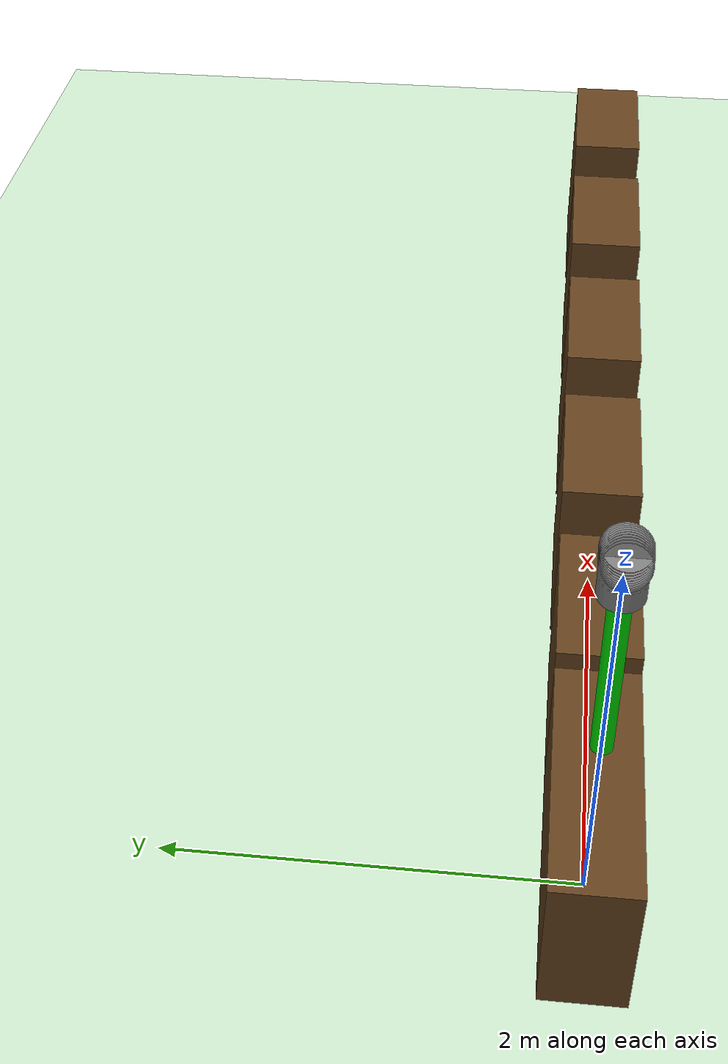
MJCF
<mujoco>
 <visual>
<headlight ambient="0.5 0.5 0.5"/>
 </visual>
	<option timestep="0.001" integrator="RK4" gravity="0 0 -9.81">
		<flag sensornoise="disable" contact="enable" energy="enable"/>
	</option>

<asset>
	<texture builtin="gradient" height="100" rgb1="1 1 1" rgb2="0 0 0" type="skybox" width="100"/>
	<texture builtin="flat" height="1278" mark="cross" markrgb="1 1 1" name="texgeom" random="0.01" rgb1="0.8 0.6 0.4" rgb2="0.8 0.6 0.4" type="cube" width="127"/>
	<texture builtin="checker" height="100" name="texplane" rgb1="0 0 0" rgb2="0.8 0.8 0.8" type="2d" width="100"/>
	<material name="MatPlane" reflectance="0.1" shininess="0" specular="1" texrepeat="10 10" texture="texplane"/>
	<material name="geom" texture="texgeom" texuniform="true"/>
</asset>

<worldbody>
    <light cutoff="100" diffuse="1 1 1" dir="-0 0 -1.3" directional="true" exponent="1" pos="0 0 1.3" specular=".1 .1 .1"/>
    <geom conaffinity="1" condim="3" material="MatPlane" name="floor" pos="0 0 0" rgba="0.8 0.9 0.8 1" size="40 40 40" type="plane"/>
	<camera name="camera" mode="trackcom"  pos="2.0 -7. 4.5" euler="60 -0 0" />

			<body name="platform_1" pos="0 0 0.3" euler = "0 0 0">
				<geom type="box" size="0.6 0.2 0.5" rgba = "0.39 0.26 0.12 1"/>
			</body>
			<body name="platform_2" pos="1 0 0.4" euler = "0 0 0">
				<geom type="box" size="0.4 0.2 0.5" rgba = "0.39 0.26 0.12 1"/>
			</body>
			<body name="platform_3" pos="2 0 0.5" euler = "0 0 0">
				<geom type="box" size="0.4 0.2 0.5" rgba = "0.39 0.26 0.12 1"/>
			</body>
			<body name="platform_4" pos="3 0 0.6" euler = "0 0 0">
				<geom type="box" size="0.4 0.2 0.5" rgba = "0.39 0.26 0.12 1"/>
			</body>
			<body name="platform_5" pos="4 0 0.7" euler = "0 0 0">
				<geom type="box" size="0.4 0.2 0.5" rgba = "0.39 0.26 0.12 1"/>
			</body>
			<body name="platform_6" pos="5 0 0.8" euler = "0 0 0">
				<geom type="box" size="0.4 0.2 0.5" rgba = "0.39 0.26 0.12 1"/>
			</body>
			<body name="torso" pos="0 0 2">
				<site name="range_site_1" pos="0 0 0.1" size="0.1 0.1 0.1" euler="0 110 0" type="cylinder"/>
				<site name="range_site_2" pos="0 0 0.1" size="0.1 0.1 0.1" euler="0 115 0" type="cylinder"/>
				<site name="range_site_3" pos="0 0 0.1" size="0.1 0.1 0.1" euler="0 120 0" type="cylinder"/>
				<site name="range_site_4" pos="0 0 0.1" size="0.1 0.1 0.1" euler="0 125 0" type="cylinder"/>
				<site name="range_site_5" pos="0 0 0.1" size="0.1 0.1 0.1" euler="0 130 0" type="cylinder"/>
				<site name="range_site_6" pos="0 0 0.1" size="0.1 0.1 0.1" euler="0 135 0" type="cylinder"/>
				<site name="range_site_7" pos="0 0 0.1" size="0.1 0.1 0.1" euler="0 140 0" type="cylinder"/>
				<site name="range_site_8" pos="0 0 0.1" size="0.1 0.1 0.1" euler="0 145 0" type="cylinder"/>
				<site name="range_site_9" pos="0 0 0.1" size="0.1 0.1 0.1" euler="0 150 0" type="cylinder"/>
				<site name="range_site_10" pos="0 0 0.1" size="0.1 0.1 0.1" euler="0 155 0" type="cylinder"/>
				<site name="accel_site" pos="0 0 0" size="0.1 0.1 0.1" euler="0 0 0" type="cylinder"/>
				<site name="gyro_site" pos="0 0 0" size="0.1 0.1 0.1" euler="0 0 0" type="cylinder"/>
				<joint name="x" type="slide" pos="0 0 0" axis="1 0 0" />
				<joint name="z" type="slide" pos="0 0 0" axis="0 0 1" />
				<geom type="sphere" size="0.1" rgba=".9 .9 .9 1" mass="1"/>
				<body name="leg" pos="0 0 -0.5" euler="0 0 0">
					<joint name="hip" type="hinge" pos="0 0 0.5" axis="0 -1 0" />
					<geom type="cylinder" size=".05 .5" rgba="0 .9 0 1" mass="1"/>
					<body name="foot" pos="0 0 -0.75">
					<joint name="knee" type="slide" pos="0 0 0.25" axis="0 0 -1" />
					<geom type="cylinder" pos="0 0 0.125" size=".01 .125" rgba="0 0 .9 1" mass="0"/>
					<geom type="sphere" size="0.05" rgba=".9 .9 0 1" mass="0.1"/>
					</body>
				</body>
			</body>
	</worldbody>

	<sensor>
		<rangefinder name="range_sensor_1" site="range_site_1" cutoff="10" />
		<rangefinder name="range_sensor_2" site="range_site_2" cutoff="10" />
		<rangefinder name="range_sensor_3" site="range_site_3" cutoff="10" />
		<rangefinder name="range_sensor_4" site="range_site_4" cutoff="10" />
		<rangefinder name="range_sensor_5" site="range_site_5" cutoff="10" />
		<rangefinder name="range_sensor_6" site="range_site_6" cutoff="10" />
		<rangefinder name="range_sensor_7" site="range_site_7" cutoff="10" />
		<rangefinder name="range_sensor_8" site="range_site_8" cutoff="10" />
		<rangefinder name="range_sensor_9" site="range_site_9" cutoff="10" />
		<rangefinder name="range_sensor_10" site="range_site_10" cutoff="10" />
		<accelerometer name="accel_sensor" site="accel_site" />
		<gyro name="gyro_sensor" site="gyro_site" />
	</sensor>

</mujoco>
